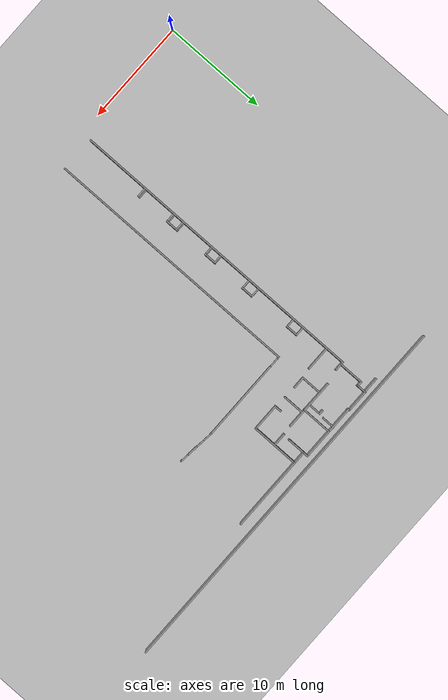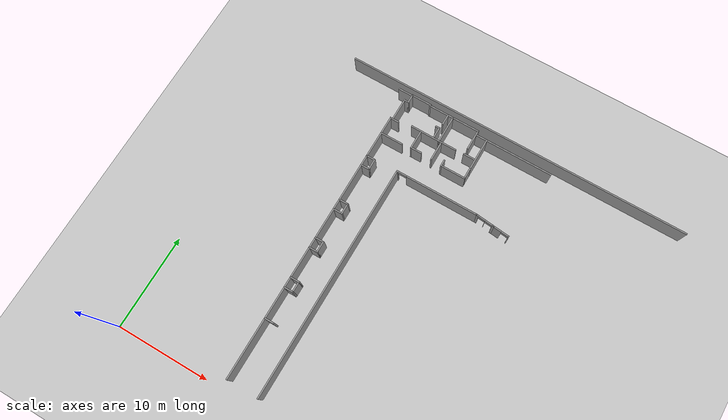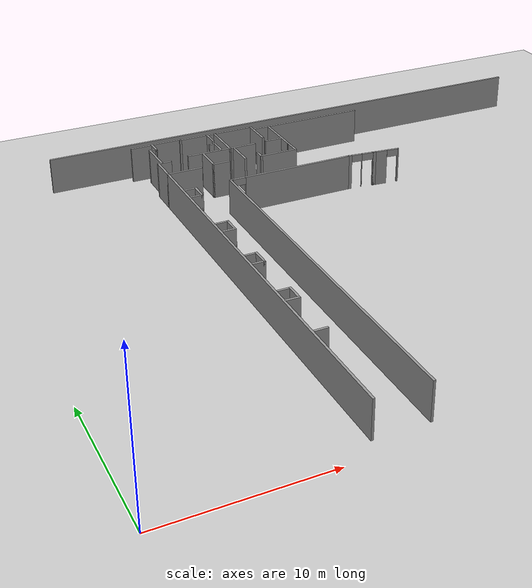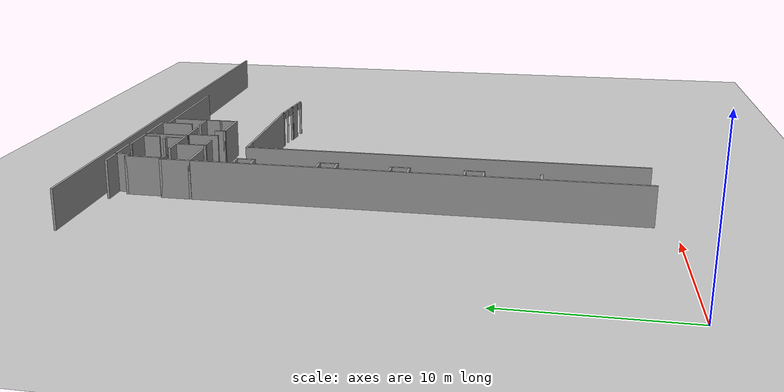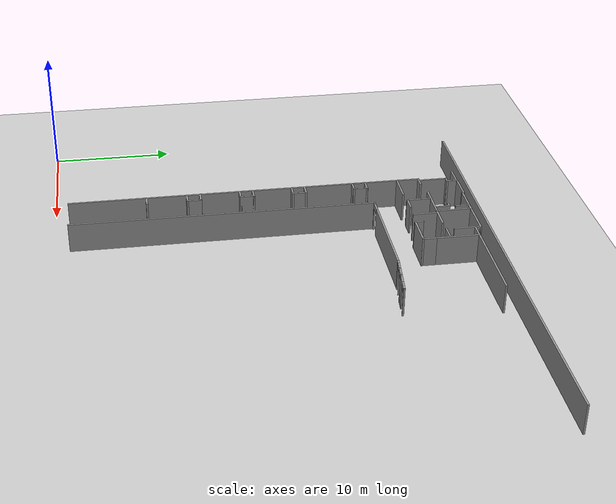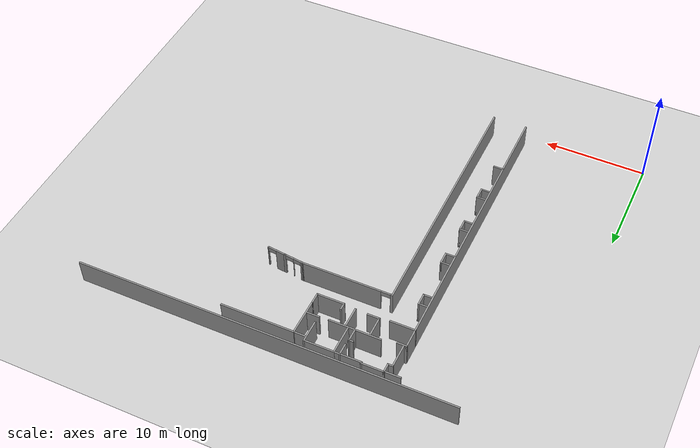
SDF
<sdf version="1.6">
 <world name="default">
  <model name="ground_plane">
   <static>1</static>
   <link name="link">
    <collision name="collision">
     <geometry><plane><normal>0 0 1</normal><size>100 100</size></plane></geometry>
     <surface>
      <contact><collide_bitmask>65535</collide_bitmask></contact>
      <friction><ode><mu>100</mu><mu2>50</mu2></ode></friction>
     </surface>
    </collision>
    <visual name="visual">
     <cast_shadows>0</cast_shadows>
     <geometry><plane><normal>0 0 1</normal><size>100 100</size></plane></geometry>
     <material>
      <script><uri>file://media/materials/scripts/gazebo.material</uri><name>Gazebo/Grey</name></script>
     </material>
    </visual>
   </link>
  </model>
  <model name="Tsudanuma_2-3-with_door">
   <pose>11.7222 12.8329 0 0 -0 0</pose>
   <link name="Wall_12">
    <collision name="Wall_12_Collision">
     <geometry><box><size>37 0.15 2.5</size></box></geometry>
     <pose>0 0 1.25 0 -0 0</pose>
    </collision>
    <visual name="Wall_12_Visual">
     <pose>0 0 1.25 0 -0 0</pose>
     <geometry><box><size>37 0.15 2.5</size></box></geometry>
     <material>
      <script><uri>file://media/materials/scripts/gazebo.material</uri><name>Gazebo/Grey</name></script>
      <ambient>1 1 1 1</ambient>
     </material>
     <meta><layer>0</layer></meta>
    </visual>
    <pose>12.4529 21.66 0 0 -0 3.14159</pose>
   </link>
   <link name="Wall_235">
    <collision name="Wall_235_Collision">
     <geometry><box><size>25.1 0.15 2.5</size></box></geometry>
     <pose>0 0 1.25 0 -0 0</pose>
    </collision>
    <visual name="Wall_235_Visual">
     <pose>0 0 1.25 0 -0 0</pose>
     <geometry><box><size>25.1 0.15 2.5</size></box></geometry>
     <material>
      <script><uri>file://media/materials/scripts/gazebo.material</uri><name>Gazebo/Grey</name></script>
      <ambient>1 1 1 1</ambient>
     </material>
     <meta><layer>0</layer></meta>
    </visual>
    <pose>3.78405 0.833759 0 0 -0 1.5708</pose>
   </link>
   <link name="Wall_237">
    <pose>8.20905 13.3088 0 0 -0 0</pose>
    <visual name="Wall_237_Visual_0">
     <pose>-4.37214 0 1.25 0 -0 0</pose>
     <geometry><box><size>0.255726 0.15 2.5</size></box></geometry>
     <material>
      <script><uri>file://media/materials/scripts/gazebo.material</uri><name>Gazebo/Grey</name></script>
      <ambient>1 1 1 1</ambient>
     </material>
     <meta><layer>0</layer></meta>
    </visual>
    <collision name="Wall_237_Collision_0">
     <geometry><box><size>0.255726 0.15 2.5</size></box></geometry>
     <pose>-4.37214 0 1.25 0 -0 0</pose>
    </collision>
    <visual name="Wall_237_Visual_1">
     <pose>0.577863 0 1.25 0 -0 0</pose>
     <geometry><box><size>7.84427 0.15 2.5</size></box></geometry>
     <material>
      <script><uri>file://media/materials/scripts/gazebo.material</uri><name>Gazebo/Grey</name></script>
      <ambient>1 1 1 1</ambient>
     </material>
     <meta><layer>0</layer></meta>
    </visual>
    <collision name="Wall_237_Collision_1">
     <geometry><box><size>7.84427 0.15 2.5</size></box></geometry>
     <pose>0.577863 0 1.25 0 -0 0</pose>
    </collision>
    <visual name="Wall_237_Visual_2">
     <pose>-3.79427 0 2.25 0 -0 0</pose>
     <geometry><box><size>0.9 0.15 0.5</size></box></geometry>
     <material>
      <script><uri>file://media/materials/scripts/gazebo.material</uri><name>Gazebo/Grey</name></script>
      <ambient>1 1 1 1</ambient>
     </material>
     <meta><layer>0</layer></meta>
    </visual>
    <collision name="Wall_237_Collision_2">
     <geometry><box><size>0.9 0.15 0.5</size></box></geometry>
     <pose>-3.79427 0 2.25 0 -0 0</pose>
    </collision>
   </link>
   <link name="Wall_239">
    <pose>14.4611 13.1148 0 0 -0 3.03583</pose>
    <visual name="Wall_239_Visual_0">
     <pose>-1.86881 0 1.25 0 -0 0</pose>
     <geometry><box><size>0.086992 0.15 2.5</size></box></geometry>
     <material>
      <script><uri>file://media/materials/scripts/gazebo.material</uri><name>Gazebo/Grey</name></script>
      <ambient>1 1 1 1</ambient>
     </material>
     <meta><layer>0</layer></meta>
    </visual>
    <collision name="Wall_239_Collision_0">
     <geometry><box><size>0.086992 0.15 2.5</size></box></geometry>
     <pose>-1.86881 0 1.25 0 -0 0</pose>
    </collision>
    <visual name="Wall_239_Visual_1">
     <pose>-0.489087 0 1.25 0 -0 0</pose>
     <geometry><box><size>1.05841 0.15 2.5</size></box></geometry>
     <material>
      <script><uri>file://media/materials/scripts/gazebo.material</uri><name>Gazebo/Grey</name></script>
      <ambient>1 1 1 1</ambient>
     </material>
     <meta><layer>0</layer></meta>
    </visual>
    <collision name="Wall_239_Collision_1">
     <geometry><box><size>1.05841 0.15 2.5</size></box></geometry>
     <pose>-0.489087 0 1.25 0 -0 0</pose>
    </collision>
    <visual name="Wall_239_Visual_2">
     <pose>-0.079716 0 1.25 0 -0 0</pose>
     <geometry><box><size>0.239669 0.15 2.5</size></box></geometry>
     <material>
      <script><uri>file://media/materials/scripts/gazebo.material</uri><name>Gazebo/Grey</name></script>
      <ambient>1 1 1 1</ambient>
     </material>
     <meta><layer>0</layer></meta>
    </visual>
    <collision name="Wall_239_Collision_2">
     <geometry><box><size>0.239669 0.15 2.5</size></box></geometry>
     <pose>-0.079716 0 1.25 0 -0 0</pose>
    </collision>
    <visual name="Wall_239_Visual_3">
     <pose>0.851774 0 1.25 0 -0 0</pose>
     <geometry><box><size>0.009272 0.15 2.5</size></box></geometry>
     <material>
      <script><uri>file://media/materials/scripts/gazebo.material</uri><name>Gazebo/Grey</name></script>
      <ambient>1 1 1 1</ambient>
     </material>
     <meta><layer>0</layer></meta>
    </visual>
    <collision name="Wall_239_Collision_3">
     <geometry><box><size>0.009272 0.15 2.5</size></box></geometry>
     <pose>0.851774 0 1.25 0 -0 0</pose>
    </collision>
    <visual name="Wall_239_Visual_4">
     <pose>1.76111 0 1.25 0 -0 0</pose>
     <geometry><box><size>0.302386 0.15 2.5</size></box></geometry>
     <material>
      <script><uri>file://media/materials/scripts/gazebo.material</uri><name>Gazebo/Grey</name></script>
      <ambient>1 1 1 1</ambient>
     </material>
     <meta><layer>0</layer></meta>
    </visual>
    <collision name="Wall_239_Collision_4">
     <geometry><box><size>0.302386 0.15 2.5</size></box></geometry>
     <pose>1.76111 0 1.25 0 -0 0</pose>
    </collision>
    <visual name="Wall_239_Visual_5">
     <pose>-1.42307 0 2.25 0 -0 0</pose>
     <geometry><box><size>0.804481 0.15 0.5</size></box></geometry>
     <material>
      <script><uri>file://media/materials/scripts/gazebo.material</uri><name>Gazebo/Grey</name></script>
      <ambient>1 1 1 1</ambient>
     </material>
     <meta><layer>0</layer></meta>
    </visual>
    <collision name="Wall_239_Collision_5">
     <geometry><box><size>0.804481 0.15 0.5</size></box></geometry>
     <pose>-1.42307 0 2.25 0 -0 0</pose>
    </collision>
    <visual name="Wall_239_Visual_6">
     <pose>0.443628 0 2.25 0 -0 0</pose>
     <geometry><box><size>0.80702 0.15 0.5</size></box></geometry>
     <material>
      <script><uri>file://media/materials/scripts/gazebo.material</uri><name>Gazebo/Grey</name></script>
      <ambient>1 1 1 1</ambient>
     </material>
     <meta><layer>0</layer></meta>
    </visual>
    <collision name="Wall_239_Collision_6">
     <geometry><box><size>0.80702 0.15 0.5</size></box></geometry>
     <pose>0.443628 0 2.25 0 -0 0</pose>
    </collision>
    <visual name="Wall_239_Visual_7">
     <pose>0.443628 0 2.25 0 -0 0</pose>
     <geometry><box><size>0.80702 0.15 0.5</size></box></geometry>
     <material>
      <script><uri>file://media/materials/scripts/gazebo.material</uri><name>Gazebo/Grey</name></script>
      <ambient>1 1 1 1</ambient>
     </material>
     <meta><layer>0</layer></meta>
    </visual>
    <collision name="Wall_239_Collision_7">
     <geometry><box><size>0.80702 0.15 0.5</size></box></geometry>
     <pose>0.443628 0 2.25 0 -0 0</pose>
    </collision>
    <visual name="Wall_239_Visual_8">
     <pose>1.23316 0 2.25 0 -0 0</pose>
     <geometry><box><size>0.753509 0.15 0.5</size></box></geometry>
     <material>
      <script><uri>file://media/materials/scripts/gazebo.material</uri><name>Gazebo/Grey</name></script>
      <ambient>1 1 1 1</ambient>
     </material>
     <meta><layer>0</layer></meta>
    </visual>
    <collision name="Wall_239_Collision_8">
     <geometry><box><size>0.753509 0.15 0.5</size></box></geometry>
     <pose>1.23316 0 2.25 0 -0 0</pose>
    </collision>
   </link>
   <link name="Wall_264">
    <collision name="Wall_264_Collision">
     <geometry><box><size>1.25 0.15 2.5</size></box></geometry>
     <pose>0 0 1.25 0 -0 0</pose>
    </collision>
    <visual name="Wall_264_Visual">
     <pose>0 0 1.25 0 -0 0</pose>
     <geometry><box><size>1.25 0.15 2.5</size></box></geometry>
     <material>
      <script><uri>file://media/materials/scripts/gazebo.material</uri><name>Gazebo/Grey</name></script>
      <ambient>1 1 1 1</ambient>
     </material>
     <meta><layer>0</layer></meta>
    </visual>
    <pose>9.83564 16.5013 0 0 -0 -1.5708</pose>
   </link>
   <link name="Wall_265">
    <collision name="Wall_265_Collision">
     <geometry><box><size>2.75 0.15 2.5</size></box></geometry>
     <pose>0 0 1.25 0 -0 0</pose>
    </collision>
    <visual name="Wall_265_Visual">
     <pose>0 0 1.25 0 -0 0</pose>
     <geometry><box><size>2.75 0.15 2.5</size></box></geometry>
     <material>
      <script><uri>file://media/materials/scripts/gazebo.material</uri><name>Gazebo/Grey</name></script>
      <ambient>1 1 1 1</ambient>
     </material>
     <meta><layer>0</layer></meta>
    </visual>
    <pose>8.53564 15.9513 0 0 -0 3.14159</pose>
   </link>
   <link name="Wall_266">
    <collision name="Wall_266_Collision">
     <geometry><box><size>0.75 0.15 2.5</size></box></geometry>
     <pose>0 0 1.25 0 -0 0</pose>
    </collision>
    <visual name="Wall_266_Visual">
     <pose>0 0 1.25 0 -0 0</pose>
     <geometry><box><size>0.75 0.15 2.5</size></box></geometry>
     <material>
      <script><uri>file://media/materials/scripts/gazebo.material</uri><name>Gazebo/Grey</name></script>
      <ambient>1 1 1 1</ambient>
     </material>
     <meta><layer>0</layer></meta>
    </visual>
    <pose>7.23564 16.2513 0 0 -0 1.5708</pose>
   </link>
   <link name="Wall_284">
    <collision name="Wall_284_Collision">
     <geometry><box><size>7.25 0.15 2.5</size></box></geometry>
     <pose>0 0 1.25 0 -0 0</pose>
    </collision>
    <visual name="Wall_284_Visual">
     <pose>0 0 1.25 0 -0 0</pose>
     <geometry><box><size>7.25 0.15 2.5</size></box></geometry>
     <material>
      <script><uri>file://media/materials/scripts/gazebo.material</uri><name>Gazebo/Grey</name></script>
      <ambient>1 1 1 1</ambient>
     </material>
     <meta><layer>0</layer></meta>
    </visual>
    <pose>13.4004 20.493 0 0 -0 3.14159</pose>
   </link>
   <link name="Wall_285">
    <collision name="Wall_285_Collision">
     <geometry><box><size>3.59171 0.15 2.5</size></box></geometry>
     <pose>0 0 1.25 0 -0 0</pose>
    </collision>
    <visual name="Wall_285_Visual">
     <pose>0 0 1.25 0 -0 0</pose>
     <geometry><box><size>3.59171 0.15 2.5</size></box></geometry>
     <material>
      <script><uri>file://media/materials/scripts/gazebo.material</uri><name>Gazebo/Grey</name></script>
      <ambient>1 1 1 1</ambient>
     </material>
     <meta><layer>0</layer></meta>
    </visual>
    <pose>9.84301 18.7721 0 0 -0 -1.57508</pose>
   </link>
   <link name="Wall_287">
    <collision name="Wall_287_Collision">
     <geometry><box><size>1.25 0.15 2.5</size></box></geometry>
     <pose>0 0 1.25 0 -0 0</pose>
    </collision>
    <visual name="Wall_287_Visual">
     <pose>0 0 1.25 0 -0 0</pose>
     <geometry><box><size>1.25 0.15 2.5</size></box></geometry>
     <material>
      <script><uri>file://media/materials/scripts/gazebo.material</uri><name>Gazebo/Grey</name></script>
      <ambient>1 1 1 1</ambient>
     </material>
     <meta><layer>0</layer></meta>
    </visual>
    <pose>9.30039 20.493 0 0 -0 3.14159</pose>
   </link>
   <link name="Wall_289">
    <collision name="Wall_289_Collision">
     <geometry><box><size>2.25 0.15 2.5</size></box></geometry>
     <pose>0 0 1.25 0 -0 0</pose>
    </collision>
    <visual name="Wall_289_Visual">
     <pose>0 0 1.25 0 -0 0</pose>
     <geometry><box><size>2.25 0.15 2.5</size></box></geometry>
     <material>
      <script><uri>file://media/materials/scripts/gazebo.material</uri><name>Gazebo/Grey</name></script>
      <ambient>1 1 1 1</ambient>
     </material>
     <meta><layer>0</layer></meta>
    </visual>
    <pose>8.64204 19.8838 0 0 -0 -1.5708</pose>
   </link>
   <link name="Wall_291">
    <collision name="Wall_291_Collision">
     <geometry><box><size>3 0.15 2.5</size></box></geometry>
     <pose>0 0 1.25 0 -0 0</pose>
    </collision>
    <visual name="Wall_291_Visual">
     <pose>0 0 1.25 0 -0 0</pose>
     <geometry><box><size>3 0.15 2.5</size></box></geometry>
     <material>
      <script><uri>file://media/materials/scripts/gazebo.material</uri><name>Gazebo/Grey</name></script>
      <ambient>1 1 1 1</ambient>
     </material>
     <meta><layer>0</layer></meta>
    </visual>
    <pose>7.21704 20.9338 0 0 -0 3.14159</pose>
   </link>
   <link name="Wall_292">
    <collision name="Wall_292_Collision">
     <geometry><box><size>3 0.15 2.5</size></box></geometry>
     <pose>0 0 1.25 0 -0 0</pose>
    </collision>
    <visual name="Wall_292_Visual">
     <pose>0 0 1.25 0 -0 0</pose>
     <geometry><box><size>3 0.15 2.5</size></box></geometry>
     <material>
      <script><uri>file://media/materials/scripts/gazebo.material</uri><name>Gazebo/Grey</name></script>
      <ambient>1 1 1 1</ambient>
     </material>
     <meta><layer>0</layer></meta>
    </visual>
    <pose>5.79204 19.5088 0 0 -0 -1.5708</pose>
   </link>
   <link name="Wall_293">
    <collision name="Wall_293_Collision">
     <geometry><box><size>2 0.15 2.5</size></box></geometry>
     <pose>0 0 1.25 0 -0 0</pose>
    </collision>
    <visual name="Wall_293_Visual">
     <pose>0 0 1.25 0 -0 0</pose>
     <geometry><box><size>2 0.15 2.5</size></box></geometry>
     <material>
      <script><uri>file://media/materials/scripts/gazebo.material</uri><name>Gazebo/Grey</name></script>
      <ambient>1 1 1 1</ambient>
     </material>
     <meta><layer>0</layer></meta>
    </visual>
    <pose>6.71704 18.0838 0 0 -0 0</pose>
   </link>
   <link name="Wall_296">
    <collision name="Wall_296_Collision">
     <geometry><box><size>2 0.15 2.5</size></box></geometry>
     <pose>0 0 1.25 0 -0 0</pose>
    </collision>
    <visual name="Wall_296_Visual">
     <pose>0 0 1.25 0 -0 0</pose>
     <geometry><box><size>2 0.15 2.5</size></box></geometry>
     <material>
      <script><uri>file://media/materials/scripts/gazebo.material</uri><name>Gazebo/Grey</name></script>
      <ambient>1 1 1 1</ambient>
     </material>
     <meta><layer>0</layer></meta>
    </visual>
    <pose>6.07606 17.0094 0 0 -0 1.5708</pose>
   </link>
   <link name="Wall_298">
    <collision name="Wall_298_Collision">
     <geometry><box><size>1.25 0.15 2.5</size></box></geometry>
     <pose>0 0 1.25 0 -0 0</pose>
    </collision>
    <visual name="Wall_298_Visual">
     <pose>0 0 1.25 0 -0 0</pose>
     <geometry><box><size>1.25 0.15 2.5</size></box></geometry>
     <material>
      <script><uri>file://media/materials/scripts/gazebo.material</uri><name>Gazebo/Grey</name></script>
      <ambient>1 1 1 1</ambient>
     </material>
     <meta><layer>0</layer></meta>
    </visual>
    <pose>9.15813 18.1417 0 0 -0 0</pose>
   </link>
   <link name="Wall_300">
    <collision name="Wall_300_Collision">
     <geometry><box><size>1.25 0.15 2.5</size></box></geometry>
     <pose>0 0 1.25 0 -0 0</pose>
    </collision>
    <visual name="Wall_300_Visual">
     <pose>0 0 1.25 0 -0 0</pose>
     <geometry><box><size>1.25 0.15 2.5</size></box></geometry>
     <material>
      <script><uri>file://media/materials/scripts/gazebo.material</uri><name>Gazebo/Grey</name></script>
      <ambient>1 1 1 1</ambient>
     </material>
     <meta><layer>0</layer></meta>
    </visual>
    <pose>4.30525 16.1184 0 0 -0 3.14159</pose>
   </link>
   <link name="Wall_301">
    <collision name="Wall_301_Collision">
     <geometry><box><size>2 0.15 2.5</size></box></geometry>
     <pose>0 0 1.25 0 -0 0</pose>
    </collision>
    <visual name="Wall_301_Visual">
     <pose>0 0 1.25 0 -0 0</pose>
     <geometry><box><size>2 0.15 2.5</size></box></geometry>
     <material>
      <script><uri>file://media/materials/scripts/gazebo.material</uri><name>Gazebo/Grey</name></script>
      <ambient>1 1 1 1</ambient>
     </material>
     <meta><layer>0</layer></meta>
    </visual>
    <pose>3.75525 17.0434 0 0 -0 1.5708</pose>
   </link>
   <link name="Wall_303">
    <collision name="Wall_303_Collision">
     <geometry><box><size>3.21202 0.15 2.5</size></box></geometry>
     <pose>0 0 1.25 0 -0 0</pose>
    </collision>
    <visual name="Wall_303_Visual">
     <pose>0 0 1.25 0 -0 0</pose>
     <geometry><box><size>3.21202 0.15 2.5</size></box></geometry>
     <material>
      <script><uri>file://media/materials/scripts/gazebo.material</uri><name>Gazebo/Grey</name></script>
      <ambient>1 1 1 1</ambient>
     </material>
     <meta><layer>0</layer></meta>
    </visual>
    <pose>4.26108 18.0958 0 0 -0 -0.007848</pose>
   </link>
   <link name="Wall_305">
    <collision name="Wall_305_Collision">
     <geometry><box><size>0.5 0.15 2.5</size></box></geometry>
     <pose>0 0 1.25 0 -0 0</pose>
    </collision>
    <visual name="Wall_305_Visual">
     <pose>0 0 1.25 0 -0 0</pose>
     <geometry><box><size>0.5 0.15 2.5</size></box></geometry>
     <material>
      <script><uri>file://media/materials/scripts/gazebo.material</uri><name>Gazebo/Grey</name></script>
      <ambient>1 1 1 1</ambient>
     </material>
     <meta><layer>0</layer></meta>
    </visual>
    <pose>4.97373 19.2947 0 0 -0 0</pose>
   </link>
   <link name="Wall_306">
    <collision name="Wall_306_Collision">
     <geometry><box><size>1.25 0.15 2.5</size></box></geometry>
     <pose>0 0 1.25 0 -0 0</pose>
    </collision>
    <visual name="Wall_306_Visual">
     <pose>0 0 1.25 0 -0 0</pose>
     <geometry><box><size>1.25 0.15 2.5</size></box></geometry>
     <material>
      <script><uri>file://media/materials/scripts/gazebo.material</uri><name>Gazebo/Grey</name></script>
      <ambient>1 1 1 1</ambient>
     </material>
     <meta><layer>0</layer></meta>
    </visual>
    <pose>5.14873 18.7447 0 0 -0 -1.5708</pose>
   </link>
   <link name="Wall_310">
    <collision name="Wall_310_Collision">
     <geometry><box><size>2.75 0.15 2.5</size></box></geometry>
     <pose>0 0 1.25 0 -0 0</pose>
    </collision>
    <visual name="Wall_310_Visual">
     <pose>0 0 1.25 0 -0 0</pose>
     <geometry><box><size>2.75 0.15 2.5</size></box></geometry>
     <material>
      <script><uri>file://media/materials/scripts/gazebo.material</uri><name>Gazebo/Grey</name></script>
      <ambient>1 1 1 1</ambient>
     </material>
     <meta><layer>0</layer></meta>
    </visual>
    <pose>4.49205 20.9338 0 0 -0 3.14159</pose>
   </link>
   <link name="Wall_312">
    <collision name="Wall_312_Collision">
     <geometry><box><size>1.25 0.15 2.5</size></box></geometry>
     <pose>0 0 1.25 0 -0 0</pose>
    </collision>
    <visual name="Wall_312_Visual">
     <pose>0 0 1.25 0 -0 0</pose>
     <geometry><box><size>1.25 0.15 2.5</size></box></geometry>
     <material>
      <script><uri>file://media/materials/scripts/gazebo.material</uri><name>Gazebo/Grey</name></script>
      <ambient>1 1 1 1</ambient>
     </material>
     <meta><layer>0</layer></meta>
    </visual>
    <pose>5.23958 20.3986 0 0 -0 1.5708</pose>
   </link>
   <link name="Wall_317">
    <collision name="Wall_317_Collision">
     <geometry><box><size>0.25 0.15 2.5</size></box></geometry>
     <pose>0 0 1.25 0 -0 0</pose>
    </collision>
    <visual name="Wall_317_Visual">
     <pose>0 0 1.25 0 -0 0</pose>
     <geometry><box><size>0.25 0.15 2.5</size></box></geometry>
     <material>
      <script><uri>file://media/materials/scripts/gazebo.material</uri><name>Gazebo/Grey</name></script>
      <ambient>1 1 1 1</ambient>
     </material>
     <meta><layer>0</layer></meta>
    </visual>
    <pose>3.19204 20.9838 0 0 -0 1.5708</pose>
   </link>
   <link name="Wall_318">
    <collision name="Wall_318_Collision">
     <geometry><box><size>2.25 0.15 2.5</size></box></geometry>
     <pose>0 0 1.25 0 -0 0</pose>
    </collision>
    <visual name="Wall_318_Visual">
     <pose>0 0 1.25 0 -0 0</pose>
     <geometry><box><size>2.25 0.15 2.5</size></box></geometry>
     <material>
      <script><uri>file://media/materials/scripts/gazebo.material</uri><name>Gazebo/Grey</name></script>
      <ambient>1 1 1 1</ambient>
     </material>
     <meta><layer>0</layer></meta>
    </visual>
    <pose>2.14204 21.0338 0 0 -0 3.14159</pose>
   </link>
   <link name="Wall_319">
    <collision name="Wall_319_Collision">
     <geometry><box><size>1 0.15 2.5</size></box></geometry>
     <pose>0 0 1.25 0 -0 0</pose>
    </collision>
    <visual name="Wall_319_Visual">
     <pose>0 0 1.25 0 -0 0</pose>
     <geometry><box><size>1 0.15 2.5</size></box></geometry>
     <material>
      <script><uri>file://media/materials/scripts/gazebo.material</uri><name>Gazebo/Grey</name></script>
      <ambient>1 1 1 1</ambient>
     </material>
     <meta><layer>0</layer></meta>
    </visual>
    <pose>1.09204 20.6088 0 0 -0 -1.5708</pose>
   </link>
   <link name="Wall_320">
    <collision name="Wall_320_Collision">
     <geometry><box><size>0.584496 0.15 2.5</size></box></geometry>
     <pose>0 0 1.25 0 -0 0</pose>
    </collision>
    <visual name="Wall_320_Visual">
     <pose>0 0 1.25 0 -0 0</pose>
     <geometry><box><size>0.584496 0.15 2.5</size></box></geometry>
     <material>
      <script><uri>file://media/materials/scripts/gazebo.material</uri><name>Gazebo/Grey</name></script>
      <ambient>1 1 1 1</ambient>
     </material>
     <meta><layer>0</layer></meta>
    </visual>
    <pose>0.874796 20.1838 0 0 -0 3.14159</pose>
   </link>
   <link name="Wall_321">
    <collision name="Wall_321_Collision">
     <geometry><box><size>2.5 0.15 2.5</size></box></geometry>
     <pose>0 0 1.25 0 -0 0</pose>
    </collision>
    <visual name="Wall_321_Visual">
     <pose>0 0 1.25 0 -0 0</pose>
     <geometry><box><size>2.5 0.15 2.5</size></box></geometry>
     <material>
      <script><uri>file://media/materials/scripts/gazebo.material</uri><name>Gazebo/Grey</name></script>
      <ambient>1 1 1 1</ambient>
     </material>
     <meta><layer>0</layer></meta>
    </visual>
    <pose>0.657548 19.0023 0 0 -0 -1.5708</pose>
   </link>
   <link name="Wall_323">
    <collision name="Wall_323_Collision">
     <geometry><box><size>1 0.15 2.5</size></box></geometry>
     <pose>0 0 1.25 0 -0 0</pose>
    </collision>
    <visual name="Wall_323_Visual">
     <pose>0 0 1.25 0 -0 0</pose>
     <geometry><box><size>1 0.15 2.5</size></box></geometry>
     <material>
      <script><uri>file://media/materials/scripts/gazebo.material</uri><name>Gazebo/Grey</name></script>
      <ambient>1 1 1 1</ambient>
     </material>
     <meta><layer>0</layer></meta>
    </visual>
    <pose>0.844704 17.8222 0 0 -0 0</pose>
   </link>
   <link name="Wall_325">
    <collision name="Wall_325_Collision">
     <geometry><box><size>2 0.15 2.5</size></box></geometry>
     <pose>0 0 1.25 0 -0 0</pose>
    </collision>
    <visual name="Wall_325_Visual">
     <pose>0 0 1.25 0 -0 0</pose>
     <geometry><box><size>2 0.15 2.5</size></box></geometry>
     <material>
      <script><uri>file://media/materials/scripts/gazebo.material</uri><name>Gazebo/Grey</name></script>
      <ambient>1 1 1 1</ambient>
     </material>
     <meta><layer>0</layer></meta>
    </visual>
    <pose>0.419704 16.8972 0 0 -0 -1.5708</pose>
   </link>
   <link name="Wall_326">
    <collision name="Wall_326_Collision">
     <geometry><box><size>2.5 0.15 2.5</size></box></geometry>
     <pose>0 0 1.25 0 -0 0</pose>
    </collision>
    <visual name="Wall_326_Visual">
     <pose>0 0 1.25 0 -0 0</pose>
     <geometry><box><size>2.5 0.15 2.5</size></box></geometry>
     <material>
      <script><uri>file://media/materials/scripts/gazebo.material</uri><name>Gazebo/Grey</name></script>
      <ambient>1 1 1 1</ambient>
     </material>
     <meta><layer>0</layer></meta>
    </visual>
    <pose>1.5947 15.9722 0 0 -0 0</pose>
   </link>
   <link name="Wall_329">
    <collision name="Wall_329_Collision">
     <geometry><box><size>1.5 0.15 2.5</size></box></geometry>
     <pose>0 0 1.25 0 -0 0</pose>
    </collision>
    <visual name="Wall_329_Visual">
     <pose>0 0 1.25 0 -0 0</pose>
     <geometry><box><size>1.5 0.15 2.5</size></box></geometry>
     <material>
      <script><uri>file://media/materials/scripts/gazebo.material</uri><name>Gazebo/Grey</name></script>
      <ambient>1 1 1 1</ambient>
     </material>
     <meta><layer>0</layer></meta>
    </visual>
    <pose>0.280327 20.9823 0 0 -0 0</pose>
   </link>
   <link name="Wall_339">
    <collision name="Wall_339_Collision">
     <geometry><box><size>27.75 0.15 2.5</size></box></geometry>
     <pose>0 0 1.25 0 -0 0</pose>
    </collision>
    <visual name="Wall_339_Visual">
     <pose>0 0 1.25 0 -0 0</pose>
     <geometry><box><size>27.75 0.15 2.5</size></box></geometry>
     <material>
      <script><uri>file://media/materials/scripts/gazebo.material</uri><name>Gazebo/Grey</name></script>
      <ambient>1 1 1 1</ambient>
     </material>
     <meta><layer>0</layer></meta>
    </visual>
    <pose>0.419704 2.17218 0 0 -0 -1.5708</pose>
   </link>
   <link name="Wall_341">
    <collision name="Wall_341_Collision">
     <geometry><box><size>1 0.15 2.5</size></box></geometry>
     <pose>0 0 1.25 0 -0 0</pose>
    </collision>
    <visual name="Wall_341_Visual">
     <pose>0 0 1.25 0 -0 0</pose>
     <geometry><box><size>1 0.15 2.5</size></box></geometry>
     <material>
      <script><uri>file://media/materials/scripts/gazebo.material</uri><name>Gazebo/Grey</name></script>
      <ambient>1 1 1 1</ambient>
     </material>
     <meta><layer>0</layer></meta>
    </visual>
    <pose>0.869952 13.199 0 0 -0 0</pose>
   </link>
   <link name="Wall_342">
    <collision name="Wall_342_Collision">
     <geometry><box><size>1.25 0.15 2.5</size></box></geometry>
     <pose>0 0 1.25 0 -0 0</pose>
    </collision>
    <visual name="Wall_342_Visual">
     <pose>0 0 1.25 0 -0 0</pose>
     <geometry><box><size>1.25 0.15 2.5</size></box></geometry>
     <material>
      <script><uri>file://media/materials/scripts/gazebo.material</uri><name>Gazebo/Grey</name></script>
      <ambient>1 1 1 1</ambient>
     </material>
     <meta><layer>0</layer></meta>
    </visual>
    <pose>1.29495 12.649 0 0 -0 -1.5708</pose>
   </link>
   <link name="Wall_343">
    <collision name="Wall_343_Collision">
     <geometry><box><size>1 0.15 2.5</size></box></geometry>
     <pose>0 0 1.25 0 -0 0</pose>
    </collision>
    <visual name="Wall_343_Visual">
     <pose>0 0 1.25 0 -0 0</pose>
     <geometry><box><size>1 0.15 2.5</size></box></geometry>
     <material>
      <script><uri>file://media/materials/scripts/gazebo.material</uri><name>Gazebo/Grey</name></script>
      <ambient>1 1 1 1</ambient>
     </material>
     <meta><layer>0</layer></meta>
    </visual>
    <pose>0.869952 12.099 0 0 -0 3.14159</pose>
   </link>
   <link name="Wall_345">
    <collision name="Wall_345_Collision">
     <geometry><box><size>1 0.15 2.5</size></box></geometry>
     <pose>0 0 1.25 0 -0 0</pose>
    </collision>
    <visual name="Wall_345_Visual">
     <pose>0 0 1.25 0 -0 0</pose>
     <geometry><box><size>1 0.15 2.5</size></box></geometry>
     <material>
      <script><uri>file://media/materials/scripts/gazebo.material</uri><name>Gazebo/Grey</name></script>
      <ambient>1 1 1 1</ambient>
     </material>
     <meta><layer>0</layer></meta>
    </visual>
    <pose>0.915055 8.01213 0 0 -0 0</pose>
   </link>
   <link name="Wall_346">
    <collision name="Wall_346_Collision">
     <geometry><box><size>1.25 0.15 2.5</size></box></geometry>
     <pose>0 0 1.25 0 -0 0</pose>
    </collision>
    <visual name="Wall_346_Visual">
     <pose>0 0 1.25 0 -0 0</pose>
     <geometry><box><size>1.25 0.15 2.5</size></box></geometry>
     <material>
      <script><uri>file://media/materials/scripts/gazebo.material</uri><name>Gazebo/Grey</name></script>
      <ambient>1 1 1 1</ambient>
     </material>
     <meta><layer>0</layer></meta>
    </visual>
    <pose>1.34005 7.46213 0 0 -0 -1.5708</pose>
   </link>
   <link name="Wall_347">
    <collision name="Wall_347_Collision">
     <geometry><box><size>1 0.15 2.5</size></box></geometry>
     <pose>0 0 1.25 0 -0 0</pose>
    </collision>
    <visual name="Wall_347_Visual">
     <pose>0 0 1.25 0 -0 0</pose>
     <geometry><box><size>1 0.15 2.5</size></box></geometry>
     <material>
      <script><uri>file://media/materials/scripts/gazebo.material</uri><name>Gazebo/Grey</name></script>
      <ambient>1 1 1 1</ambient>
     </material>
     <meta><layer>0</layer></meta>
    </visual>
    <pose>0.915055 6.91213 0 0 -0 3.14159</pose>
   </link>
   <link name="Wall_349">
    <collision name="Wall_349_Collision">
     <geometry><box><size>1 0.15 2.5</size></box></geometry>
     <pose>0 0 1.25 0 -0 0</pose>
    </collision>
    <visual name="Wall_349_Visual">
     <pose>0 0 1.25 0 -0 0</pose>
     <geometry><box><size>1 0.15 2.5</size></box></geometry>
     <material>
      <script><uri>file://media/materials/scripts/gazebo.material</uri><name>Gazebo/Grey</name></script>
      <ambient>1 1 1 1</ambient>
     </material>
     <meta><layer>0</layer></meta>
    </visual>
    <pose>0.854918 3.62212 0 0 -0 0</pose>
   </link>
   <link name="Wall_350">
    <collision name="Wall_350_Collision">
     <geometry><box><size>1.25 0.15 2.5</size></box></geometry>
     <pose>0 0 1.25 0 -0 0</pose>
    </collision>
    <visual name="Wall_350_Visual">
     <pose>0 0 1.25 0 -0 0</pose>
     <geometry><box><size>1.25 0.15 2.5</size></box></geometry>
     <material>
      <script><uri>file://media/materials/scripts/gazebo.material</uri><name>Gazebo/Grey</name></script>
      <ambient>1 1 1 1</ambient>
     </material>
     <meta><layer>0</layer></meta>
    </visual>
    <pose>1.27992 3.07212 0 0 -0 -1.5708</pose>
   </link>
   <link name="Wall_351">
    <collision name="Wall_351_Collision">
     <geometry><box><size>1 0.15 2.5</size></box></geometry>
     <pose>0 0 1.25 0 -0 0</pose>
    </collision>
    <visual name="Wall_351_Visual">
     <pose>0 0 1.25 0 -0 0</pose>
     <geometry><box><size>1 0.15 2.5</size></box></geometry>
     <material>
      <script><uri>file://media/materials/scripts/gazebo.material</uri><name>Gazebo/Grey</name></script>
      <ambient>1 1 1 1</ambient>
     </material>
     <meta><layer>0</layer></meta>
    </visual>
    <pose>0.854918 2.52212 0 0 -0 3.14159</pose>
   </link>
   <link name="Wall_353">
    <collision name="Wall_353_Collision">
     <geometry><box><size>1 0.15 2.5</size></box></geometry>
     <pose>0 0 1.25 0 -0 0</pose>
    </collision>
    <visual name="Wall_353_Visual">
     <pose>0 0 1.25 0 -0 0</pose>
     <geometry><box><size>1 0.15 2.5</size></box></geometry>
     <material>
      <script><uri>file://media/materials/scripts/gazebo.material</uri><name>Gazebo/Grey</name></script>
      <ambient>1 1 1 1</ambient>
     </material>
     <meta><layer>0</layer></meta>
    </visual>
    <pose>0.900021 -0.79795 0 0 -0 0</pose>
   </link>
   <link name="Wall_354">
    <collision name="Wall_354_Collision">
     <geometry><box><size>1.25 0.15 2.5</size></box></geometry>
     <pose>0 0 1.25 0 -0 0</pose>
    </collision>
    <visual name="Wall_354_Visual">
     <pose>0 0 1.25 0 -0 0</pose>
     <geometry><box><size>1.25 0.15 2.5</size></box></geometry>
     <material>
      <script><uri>file://media/materials/scripts/gazebo.material</uri><name>Gazebo/Grey</name></script>
      <ambient>1 1 1 1</ambient>
     </material>
     <meta><layer>0</layer></meta>
    </visual>
    <pose>1.32502 -1.34795 0 0 -0 -1.5708</pose>
   </link>
   <link name="Wall_355">
    <collision name="Wall_355_Collision">
     <geometry><box><size>1 0.15 2.5</size></box></geometry>
     <pose>0 0 1.25 0 -0 0</pose>
    </collision>
    <visual name="Wall_355_Visual">
     <pose>0 0 1.25 0 -0 0</pose>
     <geometry><box><size>1 0.15 2.5</size></box></geometry>
     <material>
      <script><uri>file://media/materials/scripts/gazebo.material</uri><name>Gazebo/Grey</name></script>
      <ambient>1 1 1 1</ambient>
     </material>
     <meta><layer>0</layer></meta>
    </visual>
    <pose>0.900021 -1.89795 0 0 -0 3.14159</pose>
   </link>
   <link name="Wall_357">
    <collision name="Wall_357_Collision">
     <geometry><box><size>1 0.15 2.5</size></box></geometry>
     <pose>0 0 1.25 0 -0 0</pose>
    </collision>
    <visual name="Wall_357_Visual">
     <pose>0 0 1.25 0 -0 0</pose>
     <geometry><box><size>1 0.15 2.5</size></box></geometry>
     <material>
      <script><uri>file://media/materials/scripts/gazebo.material</uri><name>Gazebo/Grey</name></script>
      <ambient>1 1 1 1</ambient>
     </material>
     <meta><layer>0</layer></meta>
    </visual>
    <pose>0.884987 -5.24809 0 0 -0 0</pose>
   </link>
   <static>1</static>
  </model>
 </world>
</sdf>
